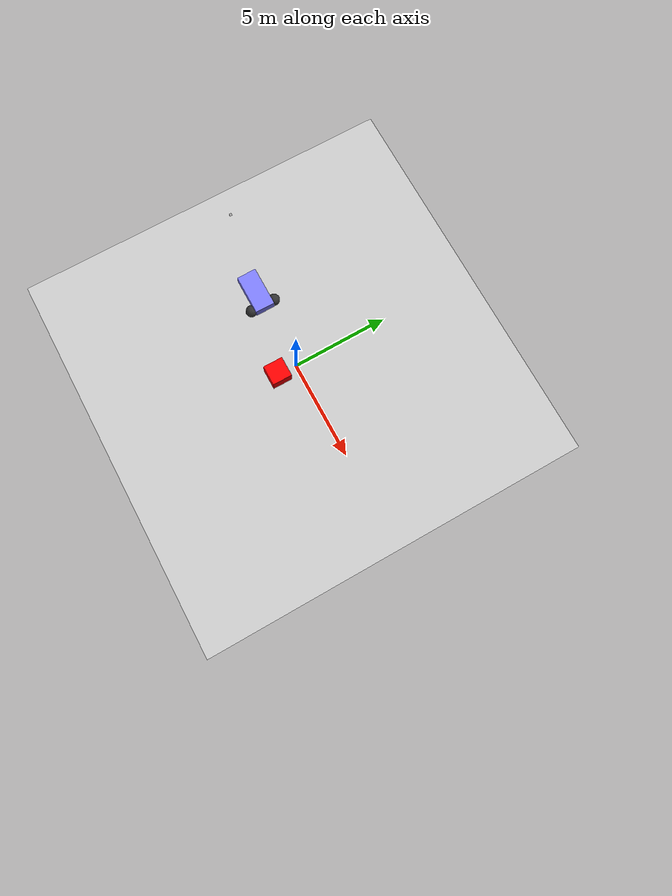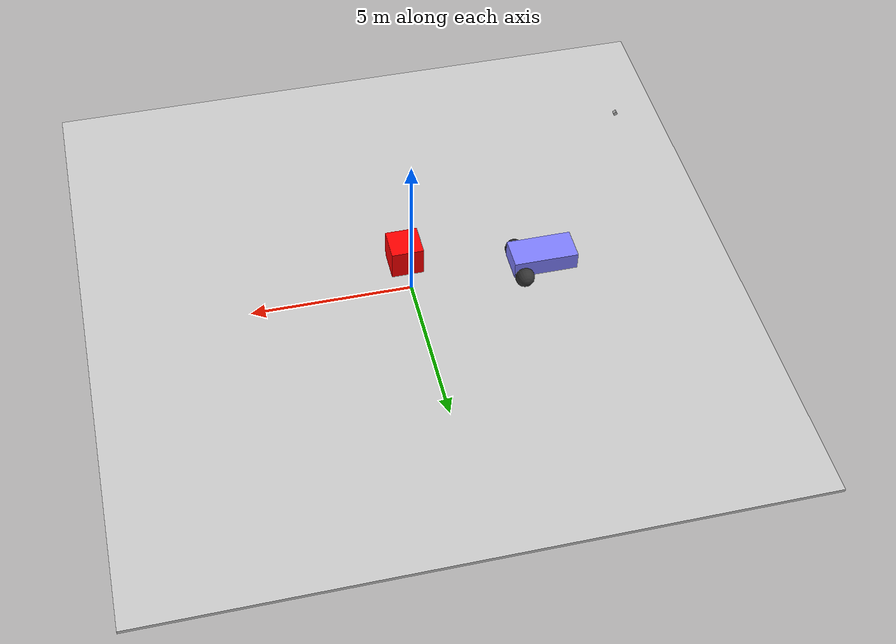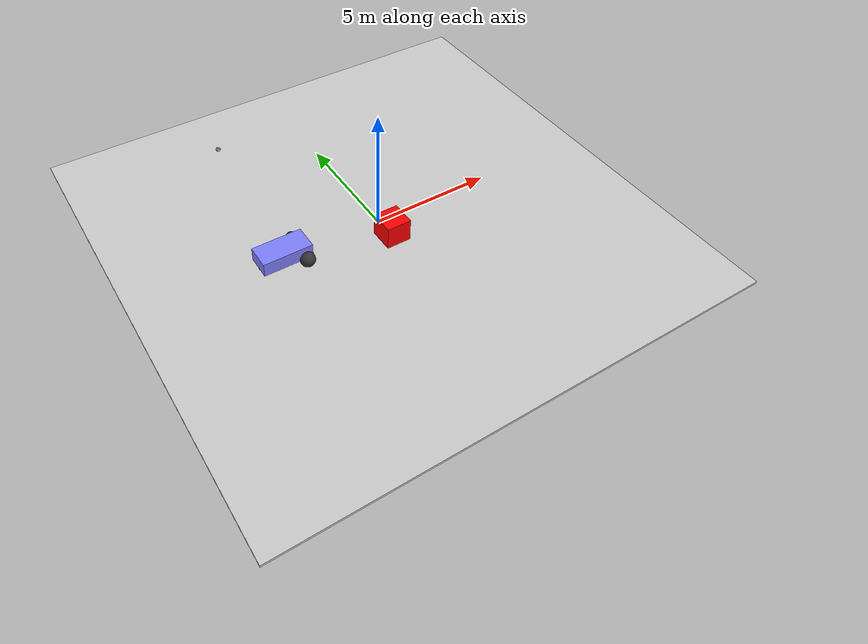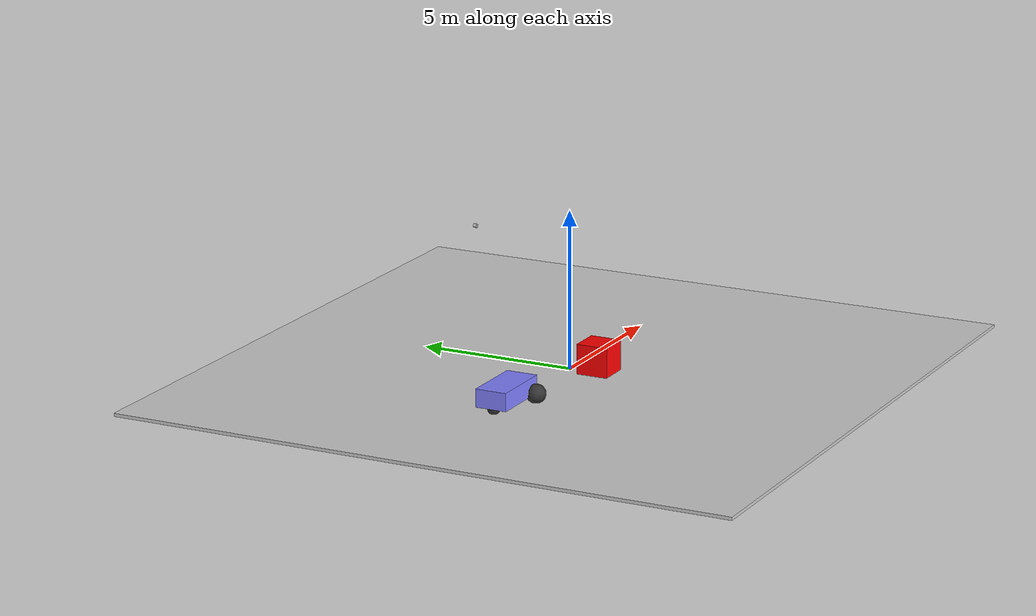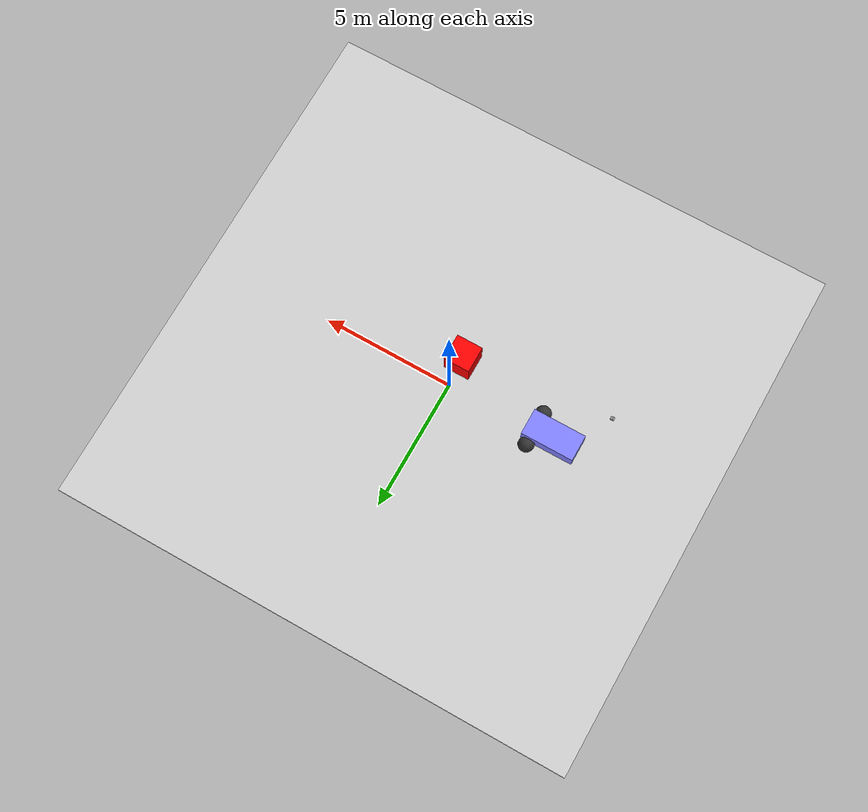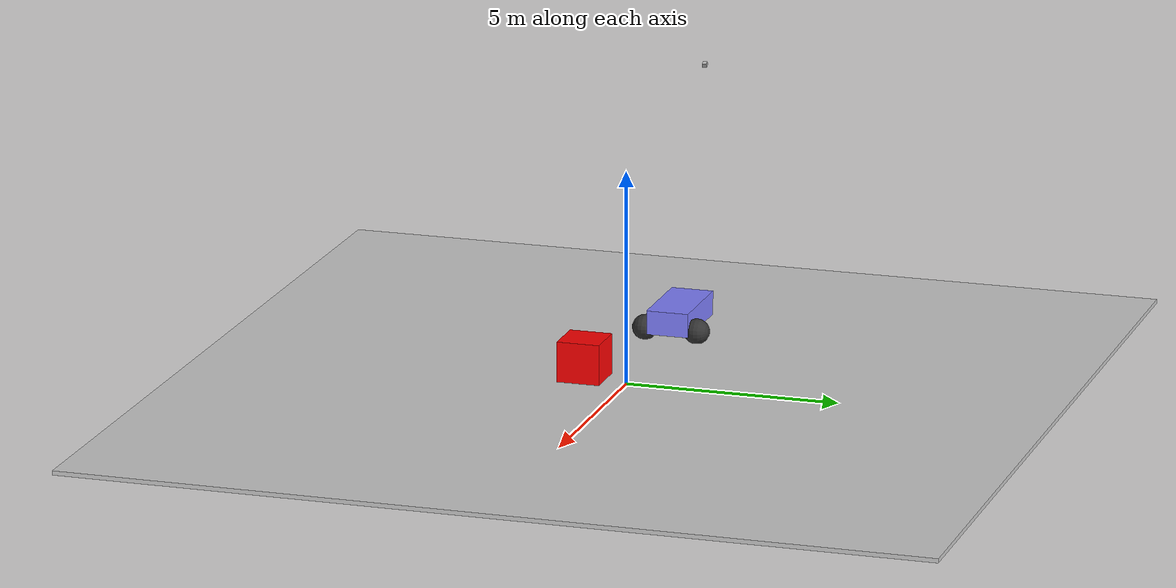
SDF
<sdf version="1.10">
 <world name="visualize_frustum_world">
  <physics name="1ms" type="ignored">
   <max_step_size>0.001</max_step_size>
   <real_time_factor>1.0</real_time_factor>
  </physics>
  <plugin filename="gz-sim-physics-system" name="gz::sim::systems::Physics"/>
  <plugin filename="gz-sim-sensors-system" name="gz::sim::systems::Sensors">
   <render_engine>ogre2</render_engine>
  </plugin>
  <plugin filename="gz-sim-scene-broadcaster-system" name="gz::sim::systems::SceneBroadcaster"/>
  <plugin filename="gz-sim-logical-camera-system" name="gz::sim::systems::LogicalCamera">
   <render_engine>ogre2</render_engine>
  </plugin>
  <light type="directional" name="sun">
   <pose>0 0 10 0 0 0</pose>
   <diffuse>0.8 0.8 0.8 1</diffuse>
   <specular>0.2 0.2 0.2 1</specular>
   <attenuation>
    <range>1000</range>
    <constant>0.9</constant>
    <linear>0.01</linear>
    <quadratic>0.001</quadratic>
   </attenuation>
   <direction>-0.5 0.1 -0.9</direction>
  </light>
  <model name="ground_plane">
   <static>true</static>
   <link name="link">
    <collision name="collision"><geometry><box><size>20 20 0.1</size></box></geometry></collision>
    <visual name="visual">
     <geometry><box><size>20 20 0.1</size></box></geometry>
     <material>
      <ambient>0.8 0.8 0.8 1</ambient>
      <diffuse>0.8 0.8 0.8 1</diffuse>
      <specular>0.8 0.8 0.8 1</specular>
     </material>
    </visual>
   </link>
  </model>
  <model name="box">
   <pose>0 -1 0.5 0 0 0</pose>
   <link name="box_link">
    <inertial>
     <inertia><ixx>1</ixx><ixy>0</ixy><ixz>0</ixz><iyy>1</iyy><iyz>0</iyz><izz>1</izz></inertia>
     <mass>1.0</mass>
    </inertial>
    <collision name="box_collision"><geometry><box><size>1 1 1</size></box></geometry></collision>
    <visual name="box_visual">
     <geometry><box><size>1 1 1</size></box></geometry>
     <material><ambient>1 0 0 1</ambient><diffuse>1 0 0 1</diffuse><specular>1 0 0 1</specular></material>
    </visual>
   </link>
  </model>
  <model name="vehicle_blue">
   <pose>-4 0 0.325 0 0 0.0</pose>
   <link name="chassis">
    <pose>-0.151427 -0 0.175 0 -0 0</pose>
    <inertial>
     <mass>1.14395</mass>
     <inertia>
      <ixx>0.126164</ixx>
      <ixy>0</ixy>
      <ixz>0</ixz>
      <iyy>0.416519</iyy>
      <iyz>0</iyz>
      <izz>0.481014</izz>
     </inertia>
    </inertial>
    <visual name="visual">
     <geometry><box><size>2.01142 1 0.568726</size></box></geometry>
     <material>
      <ambient>0.5 0.5 1.0 1</ambient>
      <diffuse>0.5 0.5 1.0 1</diffuse>
      <specular>0.0 0.0 1.0 1</specular>
     </material>
    </visual>
    <collision name="collision"><geometry><box><size>2.01142 1 0.568726</size></box></geometry></collision>
   </link>
   <link name="left_wheel">
    <pose>0.554283 0.625029 -0.025 -1.5707 0 0</pose>
    <inertial>
     <mass>2</mass>
     <inertia><ixx>0.145833</ixx><ixy>0</ixy><ixz>0</ixz><iyy>0.145833</iyy><iyz>0</iyz><izz>0.125</izz></inertia>
    </inertial>
    <visual name="visual">
     <geometry><sphere><radius>0.3</radius></sphere></geometry>
     <material>
      <ambient>0.2 0.2 0.2 1</ambient>
      <diffuse>0.2 0.2 0.2 1</diffuse>
      <specular>0.2 0.2 0.2 1</specular>
     </material>
    </visual>
    <collision name="collision"><geometry><sphere><radius>0.3</radius></sphere></geometry></collision>
   </link>
   <link name="right_wheel">
    <pose>0.554282 -0.625029 -0.025 -1.5707 0 0</pose>
    <inertial>
     <mass>2</mass>
     <inertia><ixx>0.145833</ixx><ixy>0</ixy><ixz>0</ixz><iyy>0.145833</iyy><iyz>0</iyz><izz>0.125</izz></inertia>
    </inertial>
    <visual name="visual">
     <geometry><sphere><radius>0.3</radius></sphere></geometry>
     <material>
      <ambient>0.2 0.2 0.2 1</ambient>
      <diffuse>0.2 0.2 0.2 1</diffuse>
      <specular>0.2 0.2 0.2 1</specular>
     </material>
    </visual>
    <collision name="collision"><geometry><sphere><radius>0.3</radius></sphere></geometry></collision>
   </link>
   <link name="caster">
    <pose>-0.957138 -0 -0.125 0 -0 0</pose>
    <inertial>
     <mass>1</mass>
     <inertia><ixx>0.1</ixx><ixy>0</ixy><ixz>0</ixz><iyy>0.1</iyy><iyz>0</iyz><izz>0.1</izz></inertia>
    </inertial>
    <visual name="visual">
     <geometry><sphere><radius>0.2</radius></sphere></geometry>
     <material>
      <ambient>0.2 0.2 0.2 1</ambient>
      <diffuse>0.2 0.2 0.2 1</diffuse>
      <specular>0.2 0.2 0.2 1</specular>
     </material>
    </visual>
    <collision name="collision"><geometry><sphere><radius>0.2</radius></sphere></geometry></collision>
   </link>
   <joint name="left_wheel_joint" type="revolute">
    <parent>chassis</parent>
    <child>left_wheel</child>
    <axis><xyz>0 0 1</xyz><limit><lower>-1.79769e+308</lower><upper>1.79769e+308</upper></limit></axis>
   </joint>
   <joint name="right_wheel_joint" type="revolute">
    <parent>chassis</parent>
    <child>right_wheel</child>
    <axis><xyz>0 0 1</xyz><limit><lower>-1.79769e+308</lower><upper>1.79769e+308</upper></limit></axis>
   </joint>
   <joint name="caster_wheel" type="ball"><parent>chassis</parent><child>caster</child></joint>
   <plugin filename="gz-sim-diff-drive-system" name="gz::sim::systems::DiffDrive">
    <left_joint>left_wheel_joint</left_joint>
    <right_joint>right_wheel_joint</right_joint>
    <wheel_separation>1.25</wheel_separation>
    <wheel_radius>0.3</wheel_radius>
    <odom_publish_frequency>1</odom_publish_frequency>
   </plugin>
  </model>
  <model name="logical_camera">
   <static>true</static>
   <pose>-6 0 6 0 0.5 0</pose>
   <link name="logical_camera_link">
    <pose>0.05 0.05 0.05 0 0 0</pose>
    <collision name="collision"><geometry><box><size>0.1 0.1 0.1</size></box></geometry></collision>
    <visual name="visual"><geometry><box><size>0.1 0.1 0.1</size></box></geometry></visual>
    <sensor name="logical_camera" type="logical_camera">
     <update_rate>10</update_rate>
     <logical_camera>
      <near>0.55</near>
      <far>5</far>
      <horizontal_fov>1.04719755</horizontal_fov>
      <aspect_ratio>1.778</aspect_ratio>
     </logical_camera>
     <alwaysOn>1</alwaysOn>
     <visualize>true</visualize>
     <topic>logical_camera</topic>
     <enable_metrics>true</enable_metrics>
    </sensor>
   </link>
  </model>
 </world>
</sdf>
